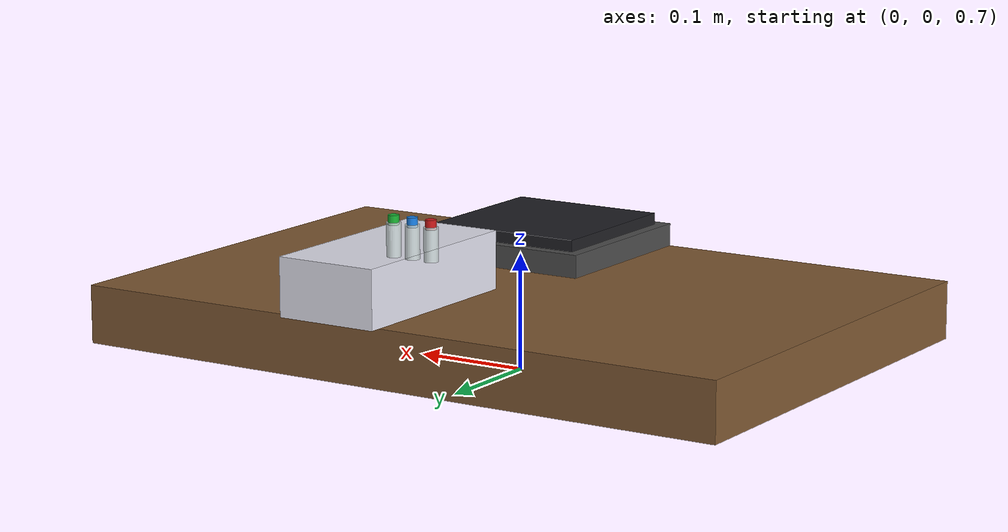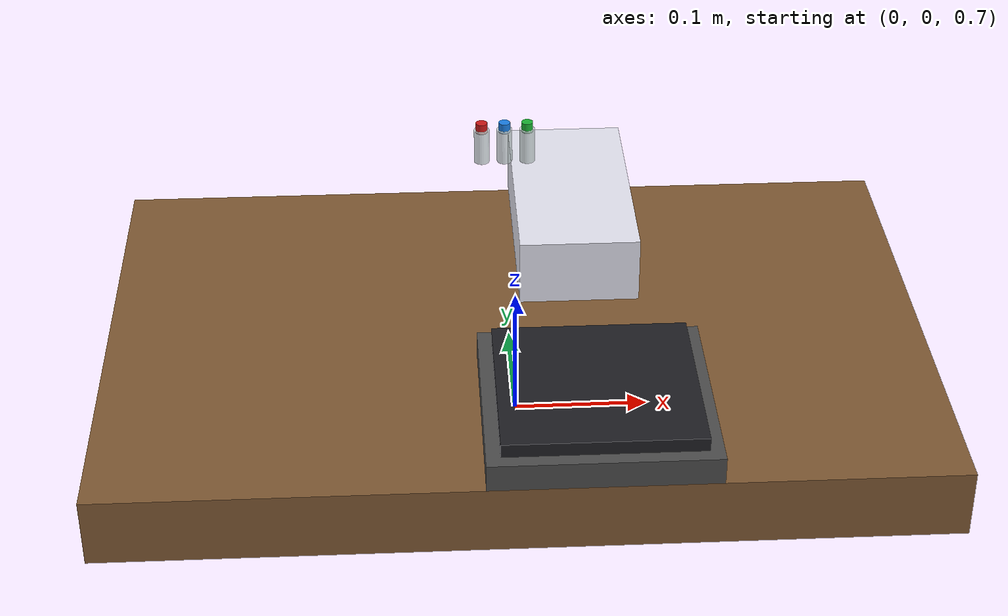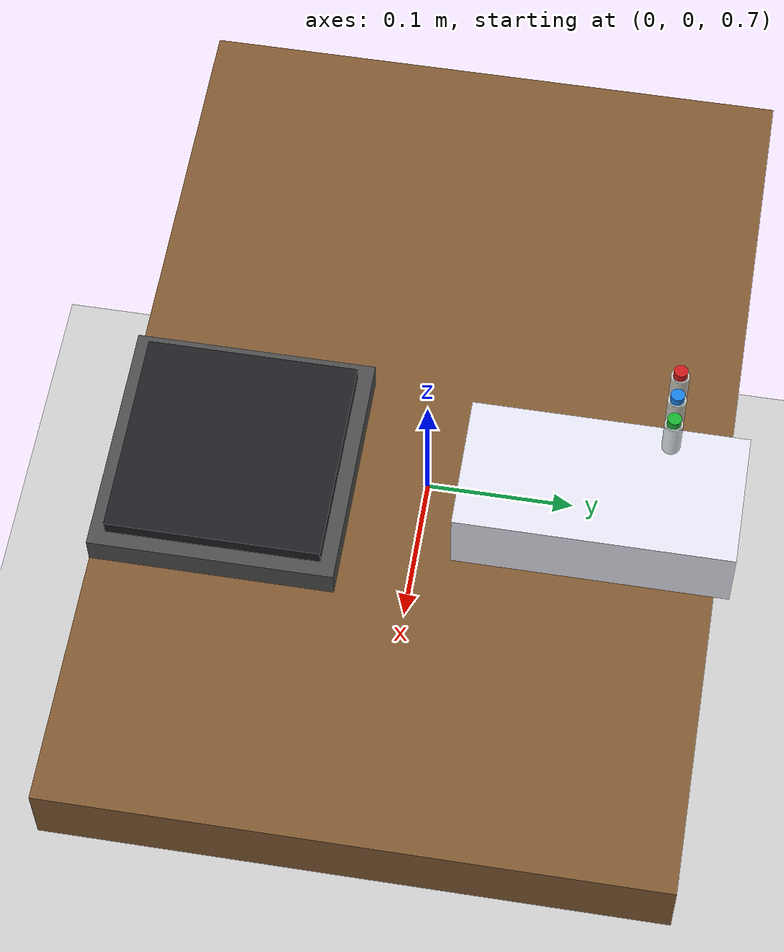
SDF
<sdf version="1.7">
 <world name="autosampler_cell">
  <include><uri>model://sun</uri></include>
  <include><uri>model://ground_plane</uri></include>
  <model name="bench">
   <static>true</static>
   <pose>0 0 0.75 0 0 0</pose>
   <link name="top">
    <visual name="v">
     <geometry><box><size>0.6 0.4 0.05</size></box></geometry>
     <material><ambient>0.5 0.35 0.2 1</ambient><diffuse>0.5 0.35 0.2 1</diffuse></material>
    </visual>
    <collision name="c"><geometry><box><size>0.6 0.4 0.05</size></box></geometry></collision>
   </link>
  </model>
  <model name="source_rack">
   <static>true</static>
   <pose>0.05 0.12 0.80 0 0 0</pose>
   <link name="body">
    <visual name="v">
     <geometry><box><size>0.09 0.18 0.05</size></box></geometry>
     <material><ambient>0.9 0.9 0.95 1</ambient><diffuse>0.9 0.9 0.95 1</diffuse></material>
    </visual>
    <collision name="c"><geometry><box><size>0.09 0.18 0.05</size></box></geometry></collision>
   </link>
  </model>
  <model name="tray_alignment_plate">
   <static>true</static>
   <pose>0.05 -0.12 0.785 0 0 0</pose>
   <link name="body">
    <visual name="v">
     <geometry><box><size>0.16 0.16 0.02</size></box></geometry>
     <material><ambient>0.3 0.3 0.3 1</ambient><diffuse>0.3 0.3 0.3 1</diffuse></material>
    </visual>
    <collision name="c"><geometry><box><size>0.16 0.16 0.02</size></box></geometry></collision>
   </link>
  </model>
  <model name="autosampler_tray">
   <static>true</static>
   <pose>0.05 -0.12 0.80 0 0 0</pose>
   <link name="body">
    <visual name="v">
     <geometry><box><size>0.14 0.14 0.01</size></box></geometry>
     <material><ambient>0.12 0.12 0.14 1</ambient><diffuse>0.12 0.12 0.14 1</diffuse></material>
    </visual>
    <collision name="c"><geometry><box><size>0.14 0.14 0.01</size></box></geometry></collision>
   </link>
  </model>
  <model name="vial_a1">
   <pose>-0.018 0.160 0.841 0 0 0</pose>
   <link name="link">
    <inertial>
     <mass>0.008</mass>
     <inertia><ixx>1.0e-6</ixx><iyy>1.0e-6</iyy><izz>0.5e-6</izz><ixy>0</ixy><ixz>0</ixz><iyz>0</iyz></inertia>
    </inertial>
    <visual name="body">
     <pose>0 0 -0.002 0 0 0</pose>
     <geometry><cylinder><radius>0.006</radius><length>0.028</length></cylinder></geometry>
     <material><ambient>0.85 0.9 0.9 0.8</ambient><diffuse>0.85 0.9 0.9 0.8</diffuse></material>
    </visual>
    <visual name="cap">
     <pose>0 0 0.014 0 0 0</pose>
     <geometry><cylinder><radius>0.0045</radius><length>0.008</length></cylinder></geometry>
     <material><ambient>0.8 0.1 0.1 1</ambient><diffuse>0.8 0.1 0.1 1</diffuse></material>
    </visual>
    <collision name="c">
     <geometry><cylinder><radius>0.006</radius><length>0.032</length></cylinder></geometry>
    </collision>
   </link>
  </model>
  <model name="vial_a3">
   <pose>0.000 0.160 0.841 0 0 0</pose>
   <link name="link">
    <inertial>
     <mass>0.008</mass>
     <inertia><ixx>1.0e-6</ixx><iyy>1.0e-6</iyy><izz>0.5e-6</izz><ixy>0</ixy><ixz>0</ixz><iyz>0</iyz></inertia>
    </inertial>
    <visual name="body">
     <pose>0 0 -0.002 0 0 0</pose>
     <geometry><cylinder><radius>0.006</radius><length>0.028</length></cylinder></geometry>
     <material><ambient>0.85 0.9 0.9 0.8</ambient><diffuse>0.85 0.9 0.9 0.8</diffuse></material>
    </visual>
    <visual name="cap">
     <pose>0 0 0.014 0 0 0</pose>
     <geometry><cylinder><radius>0.0045</radius><length>0.008</length></cylinder></geometry>
     <material><ambient>0.1 0.5 0.9 1</ambient><diffuse>0.1 0.5 0.9 1</diffuse></material>
    </visual>
    <collision name="c">
     <geometry><cylinder><radius>0.006</radius><length>0.032</length></cylinder></geometry>
    </collision>
   </link>
  </model>
  <model name="vial_a5">
   <pose>0.018 0.160 0.841 0 0 0</pose>
   <link name="link">
    <inertial>
     <mass>0.008</mass>
     <inertia><ixx>1.0e-6</ixx><iyy>1.0e-6</iyy><izz>0.5e-6</izz><ixy>0</ixy><ixz>0</ixz><iyz>0</iyz></inertia>
    </inertial>
    <visual name="body">
     <pose>0 0 -0.002 0 0 0</pose>
     <geometry><cylinder><radius>0.006</radius><length>0.028</length></cylinder></geometry>
     <material><ambient>0.85 0.9 0.9 0.8</ambient><diffuse>0.85 0.9 0.9 0.8</diffuse></material>
    </visual>
    <visual name="cap">
     <pose>0 0 0.014 0 0 0</pose>
     <geometry><cylinder><radius>0.0045</radius><length>0.008</length></cylinder></geometry>
     <material><ambient>0.1 0.7 0.2 1</ambient><diffuse>0.1 0.7 0.2 1</diffuse></material>
    </visual>
    <collision name="c">
     <geometry><cylinder><radius>0.006</radius><length>0.032</length></cylinder></geometry>
    </collision>
   </link>
  </model>
  <model name="overhead_camera">
   <static>true</static>
   <pose>0.05 0 1.30 0 1.5708 0</pose>
   <link name="optical_frame">
    <sensor name="overhead_cam" type="camera">
     <always_on>1</always_on>
     <update_rate>30</update_rate>
     <topic>overhead_camera/image_raw</topic>
     <camera>
      <horizontal_fov>1.0472</horizontal_fov>
      <image><width>640</width><height>480</height><format>R8G8B8</format></image>
      <clip><near>0.05</near><far>3.0</far></clip>
     </camera>
    </sensor>
   </link>
  </model>
  <plugin filename="gz-sim-sensors-system" name="gz::sim::systems::Sensors">
   <render_engine>ogre2</render_engine>
  </plugin>
 </world>
</sdf>
